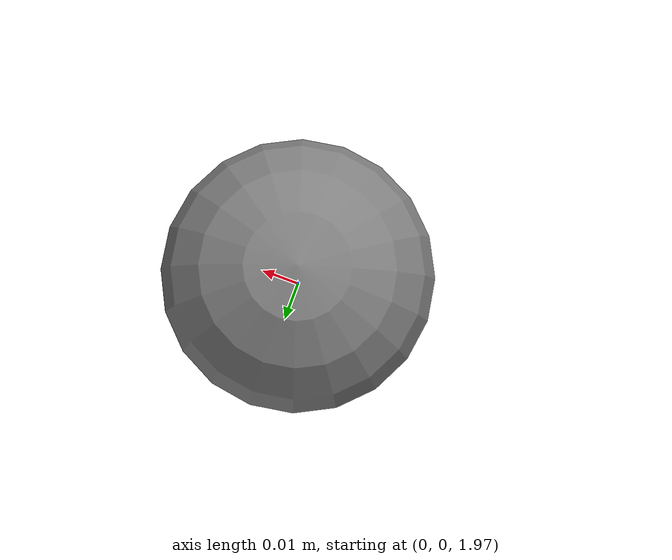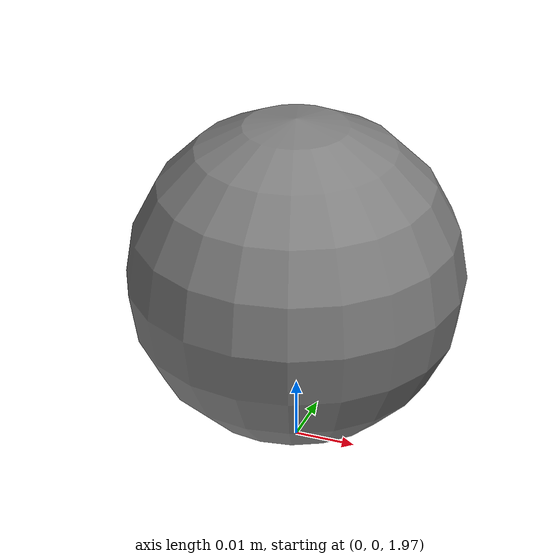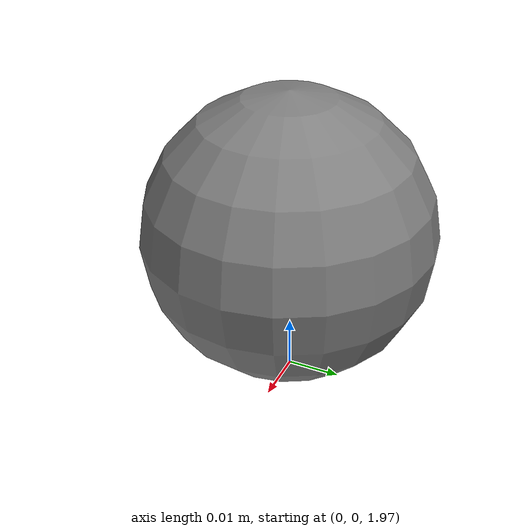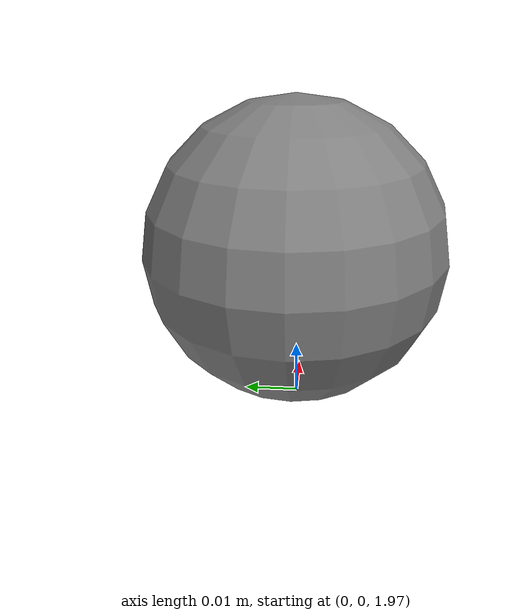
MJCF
<mujoco>

<compiler angle="radian" coordinate="local" inertiafromgeom="true"/>

<default>

<joint armature="0" damping="1" limited="false"/>

<geom friction="0.5" solimp="0.99 0.99 0.01" solref="0.01 0.5"/>

</default>

<option gravity="0 0 -9.8" timestep="0.01"/>

<asset>

<texture name="texplane" type="2d" builtin="checker" rgb1=".2 .3 .4" rgb2=".1 0.15 0.2" width="512" height="512"/>

<material name="MatPlane" texture="texplane" texrepeat="1 1" texuniform="true"/>

</asset>

<worldbody>

<light diffuse=".5 .5 .5" dir="0 0 -1" pos="0 0 3"/>

<geom condim="3" material="MatPlane" name="ground" pos="0 0 0" size="1 1 0.1" type="plane" solref="0.01 0.5"/>

<body name="ball" pos="0 0 2">

<joint name="ball\_joint" type="free" damping="0.001"/>

<geom name="ball\_geom" size="0.027" type="sphere" density="1000" solref="0.01 0.5"/>

</body>

</worldbody>

</mujoco>
